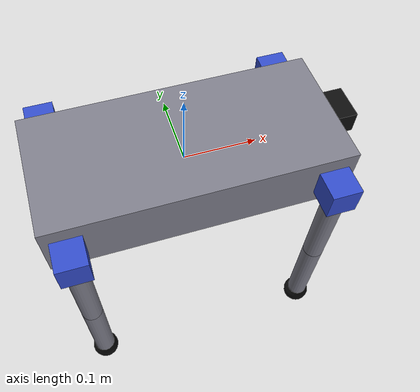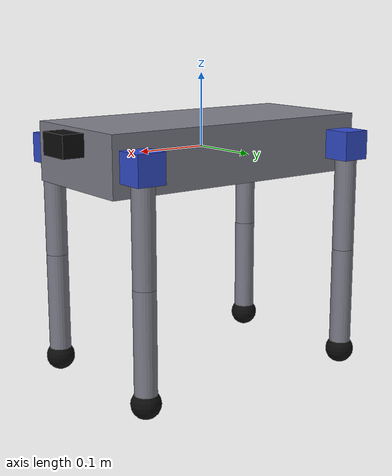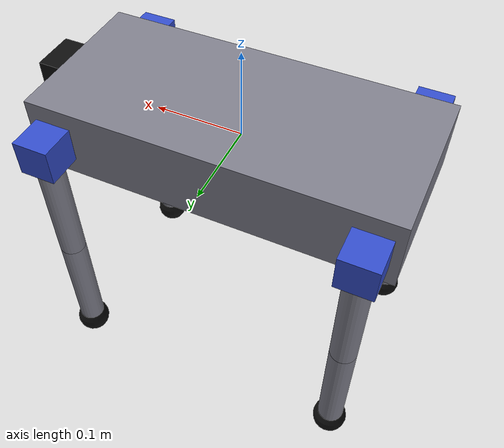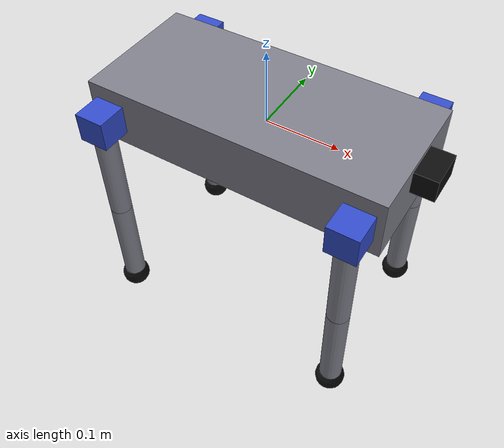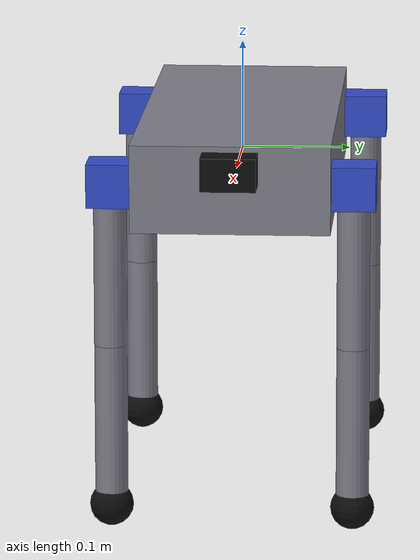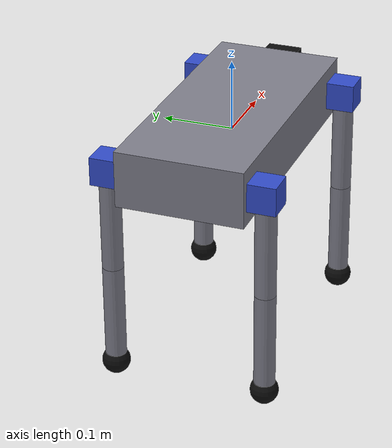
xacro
<?xml version="1.0"?>
<robot xmlns:xacro="http://www.ros.org/wiki/xacro" name="quad">

  <xacro:property name="body_l" value="0.40"/>
  <xacro:property name="body_w" value="0.18"/>
  <xacro:property name="body_h" value="0.08"/>
  <xacro:property name="body_m" value="4.0"/>
  <xacro:property name="L" value="0.15"/>
  <xacro:property name="leg_r" value="0.015"/>
  <xacro:property name="leg_m" value="0.25"/>
  <xacro:property name="foot_r" value="0.02"/>
  <xacro:property name="leg_ixx" value="${leg_m/12*(3*leg_r**2 + L**2)}"/>
  <xacro:property name="leg_izz" value="${0.5*leg_m*leg_r**2}"/>

  <material name="grey"><color rgba="0.5 0.5 0.55 1"/></material>
  <material name="blue"><color rgba="0.2 0.3 0.8 1"/></material>
  <material name="black"><color rgba="0.05 0.05 0.05 1"/></material>

  <link name="base_link">
    <visual>
      <geometry><box size="${body_l} ${body_w} ${body_h}"/></geometry>
      <material name="grey"/>
    </visual>
    <collision>
      <geometry><box size="${body_l} ${body_w} ${body_h}"/></geometry>
    </collision>
    <inertial>
      <mass value="${body_m}"/>
      <inertia ixx="${body_m/12*(body_w**2+body_h**2)}" ixy="0" ixz="0"
               iyy="${body_m/12*(body_l**2+body_h**2)}" iyz="0"
               izz="${body_m/12*(body_l**2+body_w**2)}"/>
    </inertial>
  </link>

  <link name="camera_link">
    <visual>
      <geometry><box size="0.03 0.05 0.03"/></geometry>
      <material name="black"/>
    </visual>
    <inertial>
      <mass value="0.05"/>
      <inertia ixx="1e-5" ixy="0" ixz="0" iyy="1e-5" iyz="0" izz="1e-5"/>
    </inertial>
  </link>
  <joint name="camera_joint" type="fixed">
    <parent link="base_link"/>
    <child link="camera_link"/>
    <origin xyz="${body_l/2 + 0.015} 0 0.02" rpy="0 0 0"/>
  </joint>
  <gazebo reference="camera_joint">
    <preserveFixedJoint>true</preserveFixedJoint>
  </gazebo>
  <gazebo reference="camera_link">
    <sensor name="camera" type="camera">
      <always_on>true</always_on>
      <update_rate>15</update_rate>
      <topic>/camera/image_raw</topic>
      <camera>
        <horizontal_fov>1.2</horizontal_fov>
        <image><width>320</width><height>240</height><format>R8G8B8</format></image>
        <clip><near>0.05</near><far>20</far></clip>
      </camera>
    </sensor>
  </gazebo>

  <xacro:macro name="leg" params="prefix x y">
    <link name="${prefix}_hip">
      <visual>
        <geometry><box size="0.04 0.04 0.04"/></geometry>
        <material name="blue"/>
      </visual>
      <collision>
        <geometry><box size="0.04 0.04 0.04"/></geometry>
      </collision>
      <inertial>
        <mass value="0.3"/>
        <inertia ixx="1e-4" ixy="0" ixz="0" iyy="1e-4" iyz="0" izz="1e-4"/>
      </inertial>
    </link>
    <joint name="${prefix}_hip_joint" type="revolute">
      <parent link="base_link"/>
      <child link="${prefix}_hip"/>
      <origin xyz="${x} ${y} 0"/>
      <axis xyz="1 0 0"/>
      <limit lower="-0.6" upper="0.6" effort="30" velocity="10"/>
      <dynamics damping="0.2" friction="0.0"/>
    </joint>

    <link name="${prefix}_thigh">
      <visual>
        <origin xyz="0 0 ${-L/2}"/>
        <geometry><cylinder radius="${leg_r}" length="${L}"/></geometry>
        <material name="grey"/>
      </visual>
      <collision>
        <origin xyz="0 0 ${-L/2}"/>
        <geometry><cylinder radius="${leg_r}" length="${L}"/></geometry>
      </collision>
      <inertial>
        <origin xyz="0 0 ${-L/2}"/>
        <mass value="${leg_m}"/>
        <inertia ixx="${leg_ixx}" ixy="0" ixz="0" iyy="${leg_ixx}" iyz="0" izz="${leg_izz}"/>
      </inertial>
    </link>
    <joint name="${prefix}_thigh_joint" type="revolute">
      <parent link="${prefix}_hip"/>
      <child link="${prefix}_thigh"/>
      <origin xyz="0 0 0"/>
      <axis xyz="0 1 0"/>
      <limit lower="-1.5" upper="1.5" effort="30" velocity="10"/>
      <dynamics damping="0.2" friction="0.0"/>
    </joint>

    <link name="${prefix}_shin">
      <visual>
        <origin xyz="0 0 ${-L/2}"/>
        <geometry><cylinder radius="${leg_r}" length="${L}"/></geometry>
        <material name="grey"/>
      </visual>
      <visual>
        <origin xyz="0 0 ${-L}"/>
        <geometry><sphere radius="${foot_r}"/></geometry>
        <material name="black"/>
      </visual>
      <collision>
        <origin xyz="0 0 ${-L}"/>
        <geometry><sphere radius="${foot_r}"/></geometry>
      </collision>
      <inertial>
        <origin xyz="0 0 ${-L/2}"/>
        <mass value="${leg_m}"/>
        <inertia ixx="${leg_ixx}" ixy="0" ixz="0" iyy="${leg_ixx}" iyz="0" izz="${leg_izz}"/>
      </inertial>
    </link>
    <joint name="${prefix}_knee_joint" type="revolute">
      <parent link="${prefix}_thigh"/>
      <child link="${prefix}_shin"/>
      <origin xyz="0 0 ${-L}"/>
      <axis xyz="0 1 0"/>
      <limit lower="0.0" upper="2.6" effort="30" velocity="10"/>
      <dynamics damping="0.2" friction="0.0"/>
    </joint>
    <gazebo reference="${prefix}_shin">
      <mu1>1.0</mu1>
      <mu2>1.0</mu2>
    </gazebo>
  </xacro:macro>

  <xacro:leg prefix="fl" x="${ body_l/2 - 0.03}" y="${ body_w/2 + 0.02}"/>
  <xacro:leg prefix="fr" x="${ body_l/2 - 0.03}" y="${-body_w/2 - 0.02}"/>
  <xacro:leg prefix="rl" x="${-body_l/2 + 0.03}" y="${ body_w/2 + 0.02}"/>
  <xacro:leg prefix="rr" x="${-body_l/2 + 0.03}" y="${-body_w/2 - 0.02}"/>

  <xacro:macro name="cj" params="name init">
    <joint_name>${name}</joint_name>
    <initial_position>${init}</initial_position>
    <position_p_gain>80</position_p_gain>
    <position_i_gain>0.0</position_i_gain>
    <position_d_gain>3.0</position_d_gain>
    <position_i_max>0.1</position_i_max>
    <position_i_min>-0.1</position_i_min>
    <position_cmd_max>30</position_cmd_max>
    <position_cmd_min>-30</position_cmd_min>
  </xacro:macro>
  <xacro:macro name="ctrl_joints" params="prefix">
    <xacro:cj name="${prefix}_hip_joint" init="0.0"/>
    <xacro:cj name="${prefix}_thigh_joint" init="-0.75"/>
    <xacro:cj name="${prefix}_knee_joint" init="1.5"/>
  </xacro:macro>

  <gazebo>
    <plugin filename="gz-sim-joint-state-publisher-system"
            name="gz::sim::systems::JointStatePublisher">
      <topic>/joint_states</topic>
    </plugin>
    <plugin filename="gz-sim-joint-trajectory-controller-system"
            name="gz::sim::systems::JointTrajectoryController">
      <topic>/joint_trajectory</topic>
      <xacro:ctrl_joints prefix="fl"/>
      <xacro:ctrl_joints prefix="fr"/>
      <xacro:ctrl_joints prefix="rl"/>
      <xacro:ctrl_joints prefix="rr"/>
    </plugin>
  </gazebo>
</robot>
